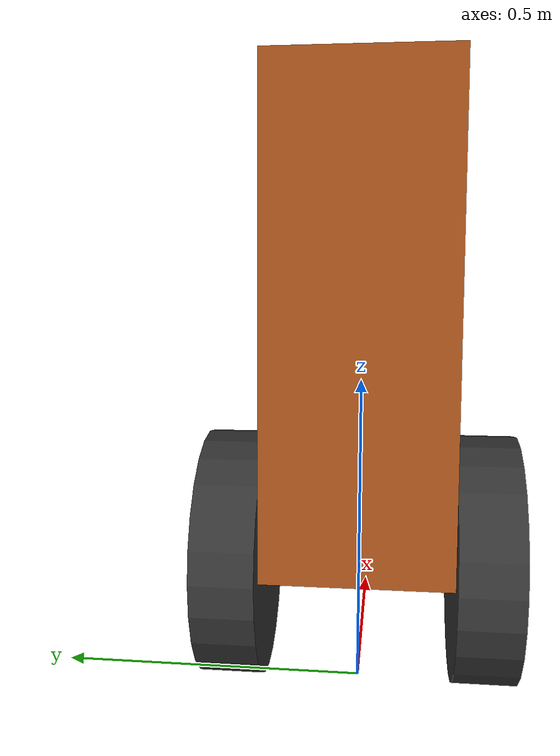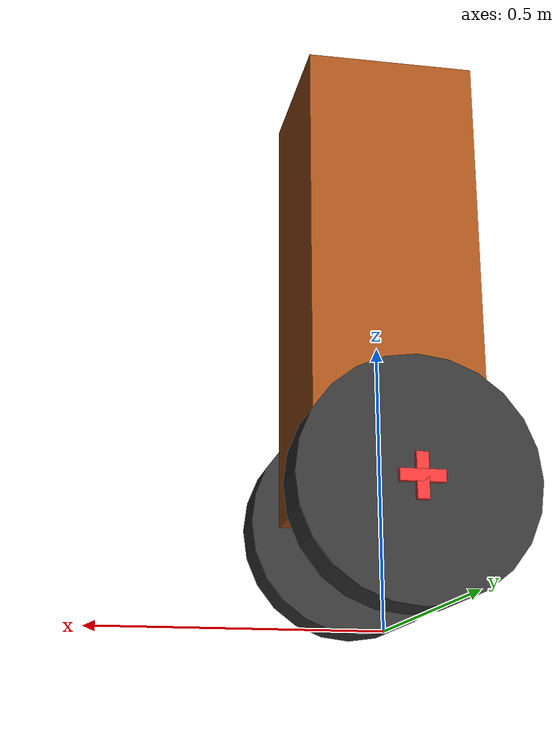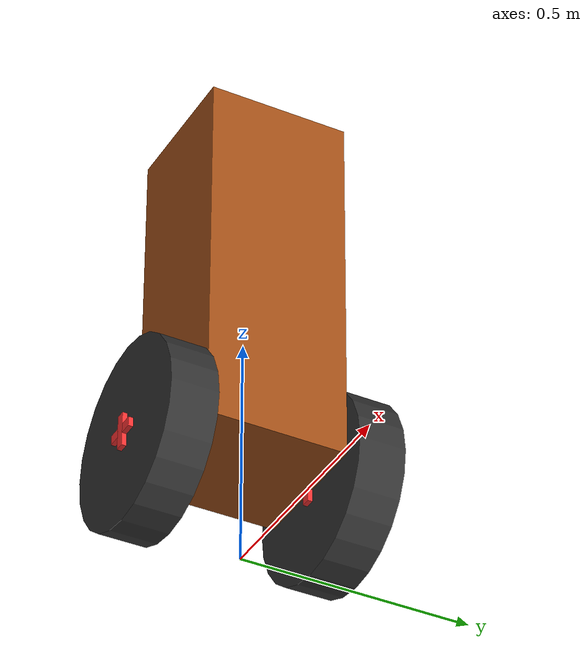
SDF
<?xml version="1.0" ?>
<sdf version="1.9">
    <model name='teeterbot_training_wheels'>
        <link name="body_com">
            <sensor name="imu_sensor" type="imu">
                <always_on>1</always_on>
                <update_rate>100</update_rate>
                <visualize>false</visualize>
                <topic>imu</topic>
            </sensor>
            <pose>0 0 0.6 0 0 0</pose>

            <visual name="visual_body">
                <geometry>
                    <box>
                        <size>0.3 0.3 0.8</size>
                    </box>
                </geometry>
                <material>
                    <ambient>0.64 0.314 0.095 1</ambient>
                    <diffuse>0.64 0.314 0.095 1</diffuse>
                    <specular>0.64 0.314 0.095 1</specular>
                </material>
            </visual>

            <collision name="collision_body">
                <geometry>
                    <box>
                        <size>0.3 0.3 0.8</size>
                    </box>
                </geometry>
            </collision>

            <collision name="rear_training_wheel">
                <pose>-1.0 0.0 -0.535 0 0 0</pose>
                <geometry>
                    <sphere>
                        <radius>0.05</radius>
                    </sphere>
                </geometry>
                <surface>
                    <friction>
                        <ode>
                        <mu>0</mu>
                        <mu2>0</mu2>
                        <slip1>1.0</slip1>
                        <slip2>1.0</slip2>
                        </ode>
                    </friction>
                </surface>
            </collision>

            <collision name="front_training_wheel">
                <pose>1.0 0.0 -0.535 0 0 0</pose>
                <geometry>
                    <sphere>
                        <radius>0.05</radius>
                    </sphere>
                </geometry>
                <surface>
                    <friction>
                        <ode>
                        <mu>0</mu>
                        <mu2>0</mu2>
                        <slip1>1.0</slip1>
                        <slip2>1.0</slip2>
                        </ode>
                    </friction>
                </surface>
            </collision>

            <inertial>
                <mass>10.0</mass>
                <inertia>
                    <ixx>0.6083</ixx>
                    <ixy>0</ixy>
                    <ixz>0</ixz>
                    <iyy>0.6083</iyy>
                    <iyz>0</iyz>
                    <izz>0.15</izz>
                </inertia>
            </inertial>
        </link>

        <link name="left_wheel">
            <pose>0 0.2 0.21 -1.5707963267948966 0 0</pose>
            <visual name="visual_left_wheel">
                <geometry>
                    <cylinder>
                        <radius>0.2</radius>
                        <length>0.1</length>
                    </cylinder>
                </geometry>
                <material>
                    <ambient>0.2 0.2 0.2 1</ambient>
                    <diffuse>0.2 0.2 0.2 1</diffuse>
                    <specular>0.2 0.2 0.2 1</specular>
                </material>
            </visual>
            <visual name="visual_left_hub1">
                <geometry>
                    <box>
                        <size>0.02 0.075 0.12</size>
                    </box>
                </geometry>
                <material>
                    <ambient>1.0 0.2 0.2 1</ambient>
                    <diffuse>1.0 0.2 0.2 1</diffuse>
                    <specular>1.0 0.2 0.2 1</specular>
                </material>
            </visual>
            <visual name="visual_left_hub2">
                <geometry>
                    <box>
                        <size>0.075 0.02 0.12</size>
                    </box>
                </geometry>

                <material>
                    <ambient>1.0 0.2 0.2 1</ambient>
                    <diffuse>1.0 0.2 0.2 1</diffuse>
                    <specular>1.0 0.2 0.2 1</specular>
                </material>
            </visual>

            <collision name="collision_left_wheel">
                <geometry>
                    <cylinder>
                        <radius>0.2</radius>
                        <length>0.1</length>
                    </cylinder>
                </geometry>
            </collision>

            <inertial>
                <mass>1.0</mass>
                <inertia>
                    <ixx>0.01</ixx>
                    <ixy>0</ixy>
                    <ixz>0</ixz>
                    <iyy>0.01</iyy>
                    <iyz>0</iyz>
                    <izz>0.02</izz>
                </inertia>
            </inertial>
        </link>

        <link name="right_wheel">
            <pose>0 -0.2 0.21 -1.5707963267948966 0 0</pose>
            <visual name="visual_right_wheel">
                <geometry>
                    <cylinder>
                        <radius>0.2</radius>
                        <length>0.1</length>
                    </cylinder>
                </geometry>
                <material>
                    <ambient>0.2 0.2 0.2 1</ambient>
                    <diffuse>0.2 0.2 0.2 1</diffuse>
                    <specular>0.2 0.2 0.2 1</specular>
                </material>
            </visual>
            <visual name="visual_right_hub1">
                <geometry>
                    <box>
                        <size>0.02 0.075 0.12</size>
                    </box>
                </geometry>
                <material>
                    <ambient>1.0 0.2 0.2 1</ambient>
                    <diffuse>1.0 0.2 0.2 1</diffuse>
                    <specular>1.0 0.2 0.2 1</specular>
                </material>
            </visual>
            <visual name="visual_right_hub2">
                <geometry>
                    <box>
                        <size>0.075 0.02 0.12</size>
                    </box>
                </geometry>

                <material>
                    <ambient>1.0 0.2 0.2 1</ambient>
                    <diffuse>1.0 0.2 0.2 1</diffuse>
                    <specular>1.0 0.2 0.2 1</specular>
                </material>
            </visual>

            <collision name="collision_right_wheel">
                <geometry>
                    <cylinder>
                        <radius>0.2</radius>
                        <length>0.1</length>
                    </cylinder>
                </geometry>
            </collision>

            <inertial>
                <mass>1.0</mass>
                <inertia>
                    <ixx>0.01</ixx>
                    <ixy>0</ixy>
                    <ixz>0</ixz>
                    <iyy>0.01</iyy>
                    <iyz>0</iyz>
                    <izz>0.02</izz>
                </inertia>
            </inertial>
        </link>

        <joint name="left_wheel_joint" type="revolute">
            <parent>body_com</parent>
            <child>left_wheel</child>
            <axis>
                <xyz>0 0 1</xyz>
                <limit>
                    <lower>-1.79769e+308</lower>
                    <upper>1.79769e+308</upper>
                </limit>
                <dynamics>
                    <damping>0.1</damping>
                    <spring_reference>0.0</spring_reference>
                    <spring_stiffness>0.0</spring_stiffness>
                </dynamics>
            </axis>
        </joint>

        <joint name="right_wheel_joint" type="revolute">
            <parent>body_com</parent>
            <child>right_wheel</child>
            <axis>
                <xyz>0 0 1</xyz>
                <limit>
                    <lower>-1.79769e+308</lower>
                    <upper>1.79769e+308</upper>
                </limit>
                <dynamics>
                    <damping>0.1</damping>
                    <spring_reference>0.0</spring_reference>
                    <spring_stiffness>0.0</spring_stiffness>
                </dynamics>
            </axis>
        </joint>

        <plugin filename="TeeterbotInterfacePlugin" name="teeterbot_gazebo::TeeterbotInterfacePlugin"/>
    </model>
</sdf>
